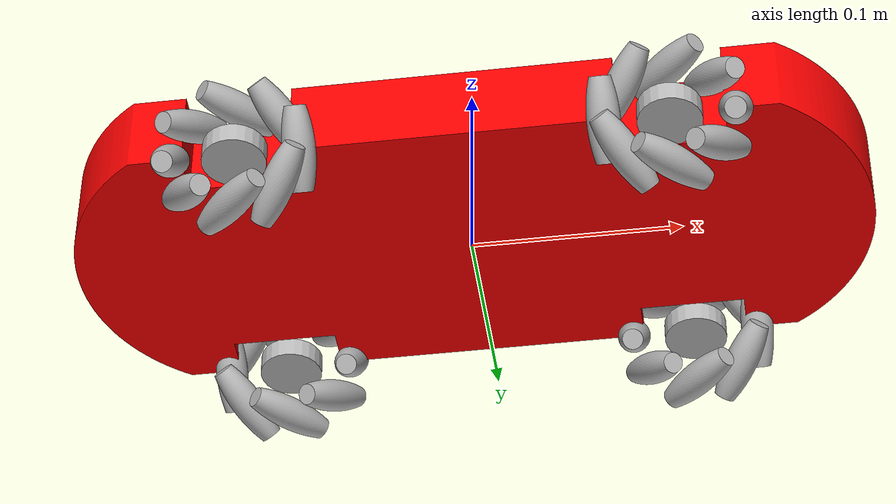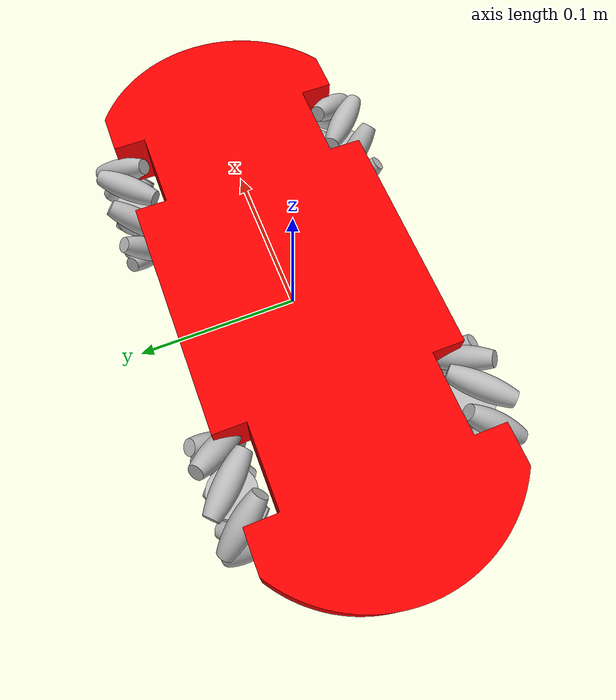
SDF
<?xml version='1.0'?>
<sdf version='1.11'>
  <model name='robot-model'>
	<!--- add links, joints, plugins, meshes, etc. -->
    <link name='robot-base'>
      <pose>0 0 0 0 0 0</pose>
      <visual name='robot-base-v'>
        <!-- mesh -->
        <geometry>
          <mesh>
            <uri>file://robot_base.stl</uri>
            <scale>0.001 0.001 0.001</scale>
          </mesh>
        </geometry>
        <material>
          <diffuse>1 0 0 1</diffuse>
          <ambient>1 0 0 1</ambient>
          <!-- specular -->
        </material>
      </visual>
      <collision name='robot-base-c'>
        <geometry>
          <mesh>
            <uri>file://robot_base.stl</uri>
            <scale>0.001 0.001 0.001</scale>
          </mesh>
        </geometry>
      </collision>
      <inertial auto='true'>
        <mass>1000</mass>
      </inertial>
    </link>

    <include>
      <name>wheel-frontleft</name>
      <pose degrees='true'>0.1 0.075 0 0 0 0</pose>
      <uri>file://gen_mecanum_mirror.sdf</uri>
    </include>

    <include>
      <name>wheel-backleft</name>
      <pose degrees='true'>-0.1 0.075 0 0 0 0</pose>
      <uri>file://gen_mecanum.sdf</uri>
    </include>

    <include>
      <name>wheel-frontright</name>
      <pose degrees='true'>0.1 -0.075 0 0 0 0</pose>
      <uri>file://gen_mecanum.sdf</uri>
    </include>

    <include>
      <name>wheel-backright</name>
      <pose degrees='true'>-0.1 -0.075 0 0 0 0</pose>
      <uri>file://gen_mecanum_mirror.sdf</uri>
    </include>

    <joint name='frontleft' type='revolute'>
      <pose>0 0 0 0 0 0</pose>
      <parent>robot-base</parent>
      <child>wheel-frontleft</child>
      <axis>
        <xyz>0 1 0</xyz>
      </axis>
    </joint>

    <joint name='frontright' type='revolute'>
      <pose>0 0 0 0 0 0</pose>
      <parent>robot-base</parent>
      <child>wheel-frontright</child>
      <axis>
        <xyz>0 1 0</xyz>
      </axis>
    </joint>

    <joint name='backleft' type='revolute'>
      <pose>0 0 0 0 0 0</pose>
      <parent>robot-base</parent>
      <child>wheel-backleft</child>
      <axis>
        <xyz>0 1 0</xyz>
      </axis>
    </joint>

    <joint name='backright' type='revolute'>
      <pose>0 0 0 0 0 0</pose>
      <parent>robot-base</parent>
      <child>wheel-backright</child>
      <axis>
        <xyz>0 1 0</xyz>
      </axis>
    </joint>

  </model>
</sdf>
